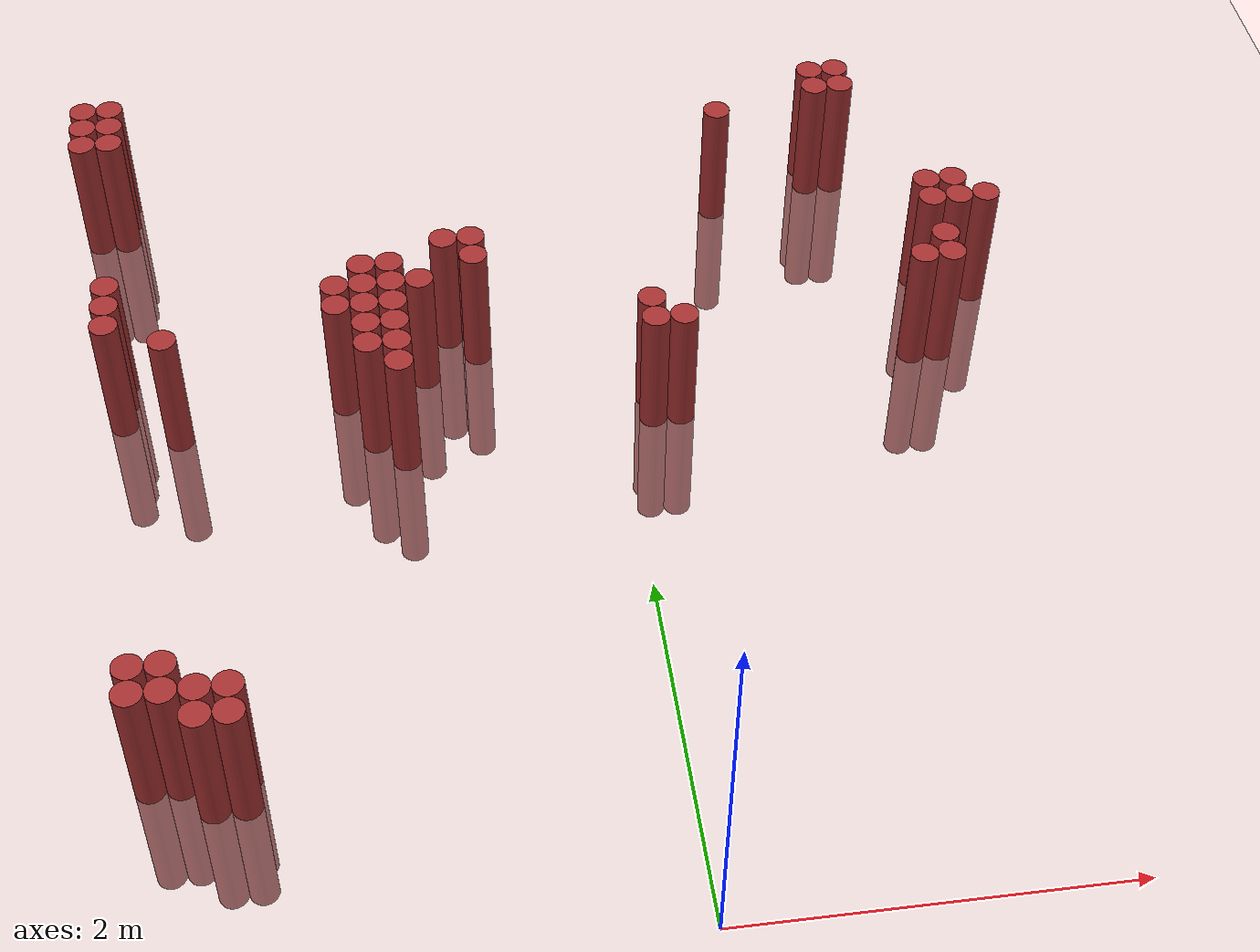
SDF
<sdf version="1.6">
 <world name="default">
  <model name="ground_plane">
   <static>1</static>
   <link name="link">
    <collision name="collision">
     <geometry><plane><normal>0 0 1</normal><size>100 100</size></plane></geometry>
     <surface><friction><ode><mu>100</mu><mu2>50</mu2></ode></friction></surface>
    </collision>
    <visual name="visual">
     <cast_shadows>0</cast_shadows>
     <geometry><plane><normal>0 0 1</normal><size>100 100</size></plane></geometry>
     <material>
      <script><uri>file://media/materials/scripts/gazebo.material</uri><name>Gazebo/Grey</name></script>
     </material>
    </visual>
   </link>
  </model>
  <model name="unit_cylinder_308">
   <static>1</static>
   <pose>-2.825000 4.975000 0.000000 0.000000 0.000000 0.000000</pose>
   <link name="link">
    <inertial>
     <mass>1</mass>
     <inertia><ixx>0.145833</ixx><ixy>0</ixy><ixz>0</ixz><iyy>0.145833</iyy><iyz>0</iyz><izz>0.125</izz></inertia>
    </inertial>
    <collision name="collision">
     <geometry><cylinder><radius>0.075000</radius><length>1.5</length></cylinder></geometry>
    </collision>
    <visual name="visual">
     <geometry><cylinder><radius>0.075000</radius><length>1.5</length></cylinder></geometry>
     <material>
      <ambient>0.648000 0.192000 0.192000 1</ambient>
      <diffuse>0.648000 0.192000 0.192000 1</diffuse>
     </material>
     <material>
      <script><name>Gazebo/Grey</name><uri>file://media/materials/scripts/gazebo.material</uri></script>
     </material>
    </visual>
   </link>
  </model>
  <model name="unit_cylinder_309">
   <static>1</static>
   <pose>-2.825000 5.125000 0.000000 0.000000 0.000000 0.000000</pose>
   <link name="link">
    <inertial>
     <mass>1</mass>
     <inertia><ixx>0.145833</ixx><ixy>0</ixy><ixz>0</ixz><iyy>0.145833</iyy><iyz>0</iyz><izz>0.125</izz></inertia>
    </inertial>
    <collision name="collision">
     <geometry><cylinder><radius>0.075000</radius><length>1.5</length></cylinder></geometry>
    </collision>
    <visual name="visual">
     <geometry><cylinder><radius>0.075000</radius><length>1.5</length></cylinder></geometry>
     <material>
      <ambient>0.648000 0.192000 0.192000 1</ambient>
      <diffuse>0.648000 0.192000 0.192000 1</diffuse>
     </material>
     <material>
      <script><name>Gazebo/Grey</name><uri>file://media/materials/scripts/gazebo.material</uri></script>
     </material>
    </visual>
   </link>
  </model>
  <model name="unit_cylinder_310">
   <static>1</static>
   <pose>-2.825000 5.275000 0.000000 0.000000 0.000000 0.000000</pose>
   <link name="link">
    <inertial>
     <mass>1</mass>
     <inertia><ixx>0.145833</ixx><ixy>0</ixy><ixz>0</ixz><iyy>0.145833</iyy><iyz>0</iyz><izz>0.125</izz></inertia>
    </inertial>
    <collision name="collision">
     <geometry><cylinder><radius>0.075000</radius><length>1.5</length></cylinder></geometry>
    </collision>
    <visual name="visual">
     <geometry><cylinder><radius>0.075000</radius><length>1.5</length></cylinder></geometry>
     <material>
      <ambient>0.648000 0.192000 0.192000 1</ambient>
      <diffuse>0.648000 0.192000 0.192000 1</diffuse>
     </material>
     <material>
      <script><name>Gazebo/Grey</name><uri>file://media/materials/scripts/gazebo.material</uri></script>
     </material>
    </visual>
   </link>
  </model>
  <model name="unit_cylinder_317">
   <static>1</static>
   <pose>-2.675000 3.475000 0.000000 0.000000 0.000000 0.000000</pose>
   <link name="link">
    <inertial>
     <mass>1</mass>
     <inertia><ixx>0.145833</ixx><ixy>0</ixy><ixz>0</ixz><iyy>0.145833</iyy><iyz>0</iyz><izz>0.125</izz></inertia>
    </inertial>
    <collision name="collision">
     <geometry><cylinder><radius>0.075000</radius><length>1.5</length></cylinder></geometry>
    </collision>
    <visual name="visual">
     <geometry><cylinder><radius>0.075000</radius><length>1.5</length></cylinder></geometry>
     <material>
      <ambient>0.648000 0.192000 0.192000 1</ambient>
      <diffuse>0.648000 0.192000 0.192000 1</diffuse>
     </material>
     <material>
      <script><name>Gazebo/Grey</name><uri>file://media/materials/scripts/gazebo.material</uri></script>
     </material>
    </visual>
   </link>
  </model>
  <model name="unit_cylinder_318">
   <static>1</static>
   <pose>-2.675000 3.625000 0.000000 0.000000 0.000000 0.000000</pose>
   <link name="link">
    <inertial>
     <mass>1</mass>
     <inertia><ixx>0.145833</ixx><ixy>0</ixy><ixz>0</ixz><iyy>0.145833</iyy><iyz>0</iyz><izz>0.125</izz></inertia>
    </inertial>
    <collision name="collision">
     <geometry><cylinder><radius>0.075000</radius><length>1.5</length></cylinder></geometry>
    </collision>
    <visual name="visual">
     <geometry><cylinder><radius>0.075000</radius><length>1.5</length></cylinder></geometry>
     <material>
      <ambient>0.648000 0.192000 0.192000 1</ambient>
      <diffuse>0.648000 0.192000 0.192000 1</diffuse>
     </material>
     <material>
      <script><name>Gazebo/Grey</name><uri>file://media/materials/scripts/gazebo.material</uri></script>
     </material>
    </visual>
   </link>
  </model>
  <model name="unit_cylinder_319">
   <static>1</static>
   <pose>-2.675000 3.775000 0.000000 0.000000 0.000000 0.000000</pose>
   <link name="link">
    <inertial>
     <mass>1</mass>
     <inertia><ixx>0.145833</ixx><ixy>0</ixy><ixz>0</ixz><iyy>0.145833</iyy><iyz>0</iyz><izz>0.125</izz></inertia>
    </inertial>
    <collision name="collision">
     <geometry><cylinder><radius>0.075000</radius><length>1.5</length></cylinder></geometry>
    </collision>
    <visual name="visual">
     <geometry><cylinder><radius>0.075000</radius><length>1.5</length></cylinder></geometry>
     <material>
      <ambient>0.648000 0.192000 0.192000 1</ambient>
      <diffuse>0.648000 0.192000 0.192000 1</diffuse>
     </material>
     <material>
      <script><name>Gazebo/Grey</name><uri>file://media/materials/scripts/gazebo.material</uri></script>
     </material>
    </visual>
   </link>
  </model>
  <model name="unit_cylinder_320">
   <static>1</static>
   <pose>-2.675000 4.975000 0.000000 0.000000 0.000000 0.000000</pose>
   <link name="link">
    <inertial>
     <mass>1</mass>
     <inertia><ixx>0.145833</ixx><ixy>0</ixy><ixz>0</ixz><iyy>0.145833</iyy><iyz>0</iyz><izz>0.125</izz></inertia>
    </inertial>
    <collision name="collision">
     <geometry><cylinder><radius>0.075000</radius><length>1.5</length></cylinder></geometry>
    </collision>
    <visual name="visual">
     <geometry><cylinder><radius>0.075000</radius><length>1.5</length></cylinder></geometry>
     <material>
      <ambient>0.648000 0.192000 0.192000 1</ambient>
      <diffuse>0.648000 0.192000 0.192000 1</diffuse>
     </material>
     <material>
      <script><name>Gazebo/Grey</name><uri>file://media/materials/scripts/gazebo.material</uri></script>
     </material>
    </visual>
   </link>
  </model>
  <model name="unit_cylinder_321">
   <static>1</static>
   <pose>-2.675000 5.125000 0.000000 0.000000 0.000000 0.000000</pose>
   <link name="link">
    <inertial>
     <mass>1</mass>
     <inertia><ixx>0.145833</ixx><ixy>0</ixy><ixz>0</ixz><iyy>0.145833</iyy><iyz>0</iyz><izz>0.125</izz></inertia>
    </inertial>
    <collision name="collision">
     <geometry><cylinder><radius>0.075000</radius><length>1.5</length></cylinder></geometry>
    </collision>
    <visual name="visual">
     <geometry><cylinder><radius>0.075000</radius><length>1.5</length></cylinder></geometry>
     <material>
      <ambient>0.648000 0.192000 0.192000 1</ambient>
      <diffuse>0.648000 0.192000 0.192000 1</diffuse>
     </material>
     <material>
      <script><name>Gazebo/Grey</name><uri>file://media/materials/scripts/gazebo.material</uri></script>
     </material>
    </visual>
   </link>
  </model>
  <model name="unit_cylinder_322">
   <static>1</static>
   <pose>-2.675000 5.275000 0.000000 0.000000 0.000000 0.000000</pose>
   <link name="link">
    <inertial>
     <mass>1</mass>
     <inertia><ixx>0.145833</ixx><ixy>0</ixy><ixz>0</ixz><iyy>0.145833</iyy><iyz>0</iyz><izz>0.125</izz></inertia>
    </inertial>
    <collision name="collision">
     <geometry><cylinder><radius>0.075000</radius><length>1.5</length></cylinder></geometry>
    </collision>
    <visual name="visual">
     <geometry><cylinder><radius>0.075000</radius><length>1.5</length></cylinder></geometry>
     <material>
      <ambient>0.648000 0.192000 0.192000 1</ambient>
      <diffuse>0.648000 0.192000 0.192000 1</diffuse>
     </material>
     <material>
      <script><name>Gazebo/Grey</name><uri>file://media/materials/scripts/gazebo.material</uri></script>
     </material>
    </visual>
   </link>
  </model>
  <model name="unit_cylinder_329">
   <static>1</static>
   <pose>-2.525000 1.075000 0.000000 0.000000 0.000000 0.000000</pose>
   <link name="link">
    <inertial>
     <mass>1</mass>
     <inertia><ixx>0.145833</ixx><ixy>0</ixy><ixz>0</ixz><iyy>0.145833</iyy><iyz>0</iyz><izz>0.125</izz></inertia>
    </inertial>
    <collision name="collision">
     <geometry><cylinder><radius>0.075000</radius><length>1.5</length></cylinder></geometry>
    </collision>
    <visual name="visual">
     <geometry><cylinder><radius>0.075000</radius><length>1.5</length></cylinder></geometry>
     <material>
      <ambient>0.648000 0.192000 0.192000 1</ambient>
      <diffuse>0.648000 0.192000 0.192000 1</diffuse>
     </material>
     <material>
      <script><name>Gazebo/Grey</name><uri>file://media/materials/scripts/gazebo.material</uri></script>
     </material>
    </visual>
   </link>
  </model>
  <model name="unit_cylinder_330">
   <static>1</static>
   <pose>-2.525000 1.225000 0.000000 0.000000 0.000000 0.000000</pose>
   <link name="link">
    <inertial>
     <mass>1</mass>
     <inertia><ixx>0.145833</ixx><ixy>0</ixy><ixz>0</ixz><iyy>0.145833</iyy><iyz>0</iyz><izz>0.125</izz></inertia>
    </inertial>
    <collision name="collision">
     <geometry><cylinder><radius>0.075000</radius><length>1.5</length></cylinder></geometry>
    </collision>
    <visual name="visual">
     <geometry><cylinder><radius>0.075000</radius><length>1.5</length></cylinder></geometry>
     <material>
      <ambient>0.648000 0.192000 0.192000 1</ambient>
      <diffuse>0.648000 0.192000 0.192000 1</diffuse>
     </material>
     <material>
      <script><name>Gazebo/Grey</name><uri>file://media/materials/scripts/gazebo.material</uri></script>
     </material>
    </visual>
   </link>
  </model>
  <model name="unit_cylinder_334">
   <static>1</static>
   <pose>-2.375000 1.075000 0.000000 0.000000 0.000000 0.000000</pose>
   <link name="link">
    <inertial>
     <mass>1</mass>
     <inertia><ixx>0.145833</ixx><ixy>0</ixy><ixz>0</ixz><iyy>0.145833</iyy><iyz>0</iyz><izz>0.125</izz></inertia>
    </inertial>
    <collision name="collision">
     <geometry><cylinder><radius>0.075000</radius><length>1.5</length></cylinder></geometry>
    </collision>
    <visual name="visual">
     <geometry><cylinder><radius>0.075000</radius><length>1.5</length></cylinder></geometry>
     <material>
      <ambient>0.648000 0.192000 0.192000 1</ambient>
      <diffuse>0.648000 0.192000 0.192000 1</diffuse>
     </material>
     <material>
      <script><name>Gazebo/Grey</name><uri>file://media/materials/scripts/gazebo.material</uri></script>
     </material>
    </visual>
   </link>
  </model>
  <model name="unit_cylinder_335">
   <static>1</static>
   <pose>-2.375000 1.225000 0.000000 0.000000 0.000000 0.000000</pose>
   <link name="link">
    <inertial>
     <mass>1</mass>
     <inertia><ixx>0.145833</ixx><ixy>0</ixy><ixz>0</ixz><iyy>0.145833</iyy><iyz>0</iyz><izz>0.125</izz></inertia>
    </inertial>
    <collision name="collision">
     <geometry><cylinder><radius>0.075000</radius><length>1.5</length></cylinder></geometry>
    </collision>
    <visual name="visual">
     <geometry><cylinder><radius>0.075000</radius><length>1.5</length></cylinder></geometry>
     <material>
      <ambient>0.648000 0.192000 0.192000 1</ambient>
      <diffuse>0.648000 0.192000 0.192000 1</diffuse>
     </material>
     <material>
      <script><name>Gazebo/Grey</name><uri>file://media/materials/scripts/gazebo.material</uri></script>
     </material>
    </visual>
   </link>
  </model>
  <model name="unit_cylinder_336">
   <static>1</static>
   <pose>-2.375000 3.325000 0.000000 0.000000 0.000000 0.000000</pose>
   <link name="link">
    <inertial>
     <mass>1</mass>
     <inertia><ixx>0.145833</ixx><ixy>0</ixy><ixz>0</ixz><iyy>0.145833</iyy><iyz>0</iyz><izz>0.125</izz></inertia>
    </inertial>
    <collision name="collision">
     <geometry><cylinder><radius>0.075000</radius><length>1.5</length></cylinder></geometry>
    </collision>
    <visual name="visual">
     <geometry><cylinder><radius>0.075000</radius><length>1.5</length></cylinder></geometry>
     <material>
      <ambient>0.648000 0.192000 0.192000 1</ambient>
      <diffuse>0.648000 0.192000 0.192000 1</diffuse>
     </material>
     <material>
      <script><name>Gazebo/Grey</name><uri>file://media/materials/scripts/gazebo.material</uri></script>
     </material>
    </visual>
   </link>
  </model>
  <model name="unit_cylinder_337">
   <static>1</static>
   <pose>-2.225000 0.925000 0.000000 0.000000 0.000000 0.000000</pose>
   <link name="link">
    <inertial>
     <mass>1</mass>
     <inertia><ixx>0.145833</ixx><ixy>0</ixy><ixz>0</ixz><iyy>0.145833</iyy><iyz>0</iyz><izz>0.125</izz></inertia>
    </inertial>
    <collision name="collision">
     <geometry><cylinder><radius>0.075000</radius><length>1.5</length></cylinder></geometry>
    </collision>
    <visual name="visual">
     <geometry><cylinder><radius>0.075000</radius><length>1.5</length></cylinder></geometry>
     <material>
      <ambient>0.648000 0.192000 0.192000 1</ambient>
      <diffuse>0.648000 0.192000 0.192000 1</diffuse>
     </material>
     <material>
      <script><name>Gazebo/Grey</name><uri>file://media/materials/scripts/gazebo.material</uri></script>
     </material>
    </visual>
   </link>
  </model>
  <model name="unit_cylinder_338">
   <static>1</static>
   <pose>-2.225000 1.075000 0.000000 0.000000 0.000000 0.000000</pose>
   <link name="link">
    <inertial>
     <mass>1</mass>
     <inertia><ixx>0.145833</ixx><ixy>0</ixy><ixz>0</ixz><iyy>0.145833</iyy><iyz>0</iyz><izz>0.125</izz></inertia>
    </inertial>
    <collision name="collision">
     <geometry><cylinder><radius>0.075000</radius><length>1.5</length></cylinder></geometry>
    </collision>
    <visual name="visual">
     <geometry><cylinder><radius>0.075000</radius><length>1.5</length></cylinder></geometry>
     <material>
      <ambient>0.648000 0.192000 0.192000 1</ambient>
      <diffuse>0.648000 0.192000 0.192000 1</diffuse>
     </material>
     <material>
      <script><name>Gazebo/Grey</name><uri>file://media/materials/scripts/gazebo.material</uri></script>
     </material>
    </visual>
   </link>
  </model>
  <model name="unit_cylinder_339">
   <static>1</static>
   <pose>-2.075000 0.925000 0.000000 0.000000 0.000000 0.000000</pose>
   <link name="link">
    <inertial>
     <mass>1</mass>
     <inertia><ixx>0.145833</ixx><ixy>0</ixy><ixz>0</ixz><iyy>0.145833</iyy><iyz>0</iyz><izz>0.125</izz></inertia>
    </inertial>
    <collision name="collision">
     <geometry><cylinder><radius>0.075000</radius><length>1.5</length></cylinder></geometry>
    </collision>
    <visual name="visual">
     <geometry><cylinder><radius>0.075000</radius><length>1.5</length></cylinder></geometry>
     <material>
      <ambient>0.648000 0.192000 0.192000 1</ambient>
      <diffuse>0.648000 0.192000 0.192000 1</diffuse>
     </material>
     <material>
      <script><name>Gazebo/Grey</name><uri>file://media/materials/scripts/gazebo.material</uri></script>
     </material>
    </visual>
   </link>
  </model>
  <model name="unit_cylinder_340">
   <static>1</static>
   <pose>-2.075000 1.075000 0.000000 0.000000 0.000000 0.000000</pose>
   <link name="link">
    <inertial>
     <mass>1</mass>
     <inertia><ixx>0.145833</ixx><ixy>0</ixy><ixz>0</ixz><iyy>0.145833</iyy><iyz>0</iyz><izz>0.125</izz></inertia>
    </inertial>
    <collision name="collision">
     <geometry><cylinder><radius>0.075000</radius><length>1.5</length></cylinder></geometry>
    </collision>
    <visual name="visual">
     <geometry><cylinder><radius>0.075000</radius><length>1.5</length></cylinder></geometry>
     <material>
      <ambient>0.648000 0.192000 0.192000 1</ambient>
      <diffuse>0.648000 0.192000 0.192000 1</diffuse>
     </material>
     <material>
      <script><name>Gazebo/Grey</name><uri>file://media/materials/scripts/gazebo.material</uri></script>
     </material>
    </visual>
   </link>
  </model>
  <model name="unit_cylinder_341">
   <static>1</static>
   <pose>-1.475000 3.475000 0.000000 0.000000 0.000000 0.000000</pose>
   <link name="link">
    <inertial>
     <mass>1</mass>
     <inertia><ixx>0.145833</ixx><ixy>0</ixy><ixz>0</ixz><iyy>0.145833</iyy><iyz>0</iyz><izz>0.125</izz></inertia>
    </inertial>
    <collision name="collision">
     <geometry><cylinder><radius>0.075000</radius><length>1.5</length></cylinder></geometry>
    </collision>
    <visual name="visual">
     <geometry><cylinder><radius>0.075000</radius><length>1.5</length></cylinder></geometry>
     <material>
      <ambient>0.648000 0.192000 0.192000 1</ambient>
      <diffuse>0.648000 0.192000 0.192000 1</diffuse>
     </material>
     <material>
      <script><name>Gazebo/Grey</name><uri>file://media/materials/scripts/gazebo.material</uri></script>
     </material>
    </visual>
   </link>
  </model>
  <model name="unit_cylinder_342">
   <static>1</static>
   <pose>-1.475000 3.625000 0.000000 0.000000 0.000000 0.000000</pose>
   <link name="link">
    <inertial>
     <mass>1</mass>
     <inertia><ixx>0.145833</ixx><ixy>0</ixy><ixz>0</ixz><iyy>0.145833</iyy><iyz>0</iyz><izz>0.125</izz></inertia>
    </inertial>
    <collision name="collision">
     <geometry><cylinder><radius>0.075000</radius><length>1.5</length></cylinder></geometry>
    </collision>
    <visual name="visual">
     <geometry><cylinder><radius>0.075000</radius><length>1.5</length></cylinder></geometry>
     <material>
      <ambient>0.648000 0.192000 0.192000 1</ambient>
      <diffuse>0.648000 0.192000 0.192000 1</diffuse>
     </material>
     <material>
      <script><name>Gazebo/Grey</name><uri>file://media/materials/scripts/gazebo.material</uri></script>
     </material>
    </visual>
   </link>
  </model>
  <model name="unit_cylinder_343">
   <static>1</static>
   <pose>-1.325000 3.175000 0.000000 0.000000 0.000000 0.000000</pose>
   <link name="link">
    <inertial>
     <mass>1</mass>
     <inertia><ixx>0.145833</ixx><ixy>0</ixy><ixz>0</ixz><iyy>0.145833</iyy><iyz>0</iyz><izz>0.125</izz></inertia>
    </inertial>
    <collision name="collision">
     <geometry><cylinder><radius>0.075000</radius><length>1.5</length></cylinder></geometry>
    </collision>
    <visual name="visual">
     <geometry><cylinder><radius>0.075000</radius><length>1.5</length></cylinder></geometry>
     <material>
      <ambient>0.648000 0.192000 0.192000 1</ambient>
      <diffuse>0.648000 0.192000 0.192000 1</diffuse>
     </material>
     <material>
      <script><name>Gazebo/Grey</name><uri>file://media/materials/scripts/gazebo.material</uri></script>
     </material>
    </visual>
   </link>
  </model>
  <model name="unit_cylinder_344">
   <static>1</static>
   <pose>-1.325000 3.325000 0.000000 0.000000 0.000000 0.000000</pose>
   <link name="link">
    <inertial>
     <mass>1</mass>
     <inertia><ixx>0.145833</ixx><ixy>0</ixy><ixz>0</ixz><iyy>0.145833</iyy><iyz>0</iyz><izz>0.125</izz></inertia>
    </inertial>
    <collision name="collision">
     <geometry><cylinder><radius>0.075000</radius><length>1.5</length></cylinder></geometry>
    </collision>
    <visual name="visual">
     <geometry><cylinder><radius>0.075000</radius><length>1.5</length></cylinder></geometry>
     <material>
      <ambient>0.648000 0.192000 0.192000 1</ambient>
      <diffuse>0.648000 0.192000 0.192000 1</diffuse>
     </material>
     <material>
      <script><name>Gazebo/Grey</name><uri>file://media/materials/scripts/gazebo.material</uri></script>
     </material>
    </visual>
   </link>
  </model>
  <model name="unit_cylinder_345">
   <static>1</static>
   <pose>-1.325000 3.475000 0.000000 0.000000 0.000000 0.000000</pose>
   <link name="link">
    <inertial>
     <mass>1</mass>
     <inertia><ixx>0.145833</ixx><ixy>0</ixy><ixz>0</ixz><iyy>0.145833</iyy><iyz>0</iyz><izz>0.125</izz></inertia>
    </inertial>
    <collision name="collision">
     <geometry><cylinder><radius>0.075000</radius><length>1.5</length></cylinder></geometry>
    </collision>
    <visual name="visual">
     <geometry><cylinder><radius>0.075000</radius><length>1.5</length></cylinder></geometry>
     <material>
      <ambient>0.648000 0.192000 0.192000 1</ambient>
      <diffuse>0.648000 0.192000 0.192000 1</diffuse>
     </material>
     <material>
      <script><name>Gazebo/Grey</name><uri>file://media/materials/scripts/gazebo.material</uri></script>
     </material>
    </visual>
   </link>
  </model>
  <model name="unit_cylinder_346">
   <static>1</static>
   <pose>-1.325000 3.625000 0.000000 0.000000 0.000000 0.000000</pose>
   <link name="link">
    <inertial>
     <mass>1</mass>
     <inertia><ixx>0.145833</ixx><ixy>0</ixy><ixz>0</ixz><iyy>0.145833</iyy><iyz>0</iyz><izz>0.125</izz></inertia>
    </inertial>
    <collision name="collision">
     <geometry><cylinder><radius>0.075000</radius><length>1.5</length></cylinder></geometry>
    </collision>
    <visual name="visual">
     <geometry><cylinder><radius>0.075000</radius><length>1.5</length></cylinder></geometry>
     <material>
      <ambient>0.648000 0.192000 0.192000 1</ambient>
      <diffuse>0.648000 0.192000 0.192000 1</diffuse>
     </material>
     <material>
      <script><name>Gazebo/Grey</name><uri>file://media/materials/scripts/gazebo.material</uri></script>
     </material>
    </visual>
   </link>
  </model>
  <model name="unit_cylinder_347">
   <static>1</static>
   <pose>-1.325000 3.775000 0.000000 0.000000 0.000000 0.000000</pose>
   <link name="link">
    <inertial>
     <mass>1</mass>
     <inertia><ixx>0.145833</ixx><ixy>0</ixy><ixz>0</ixz><iyy>0.145833</iyy><iyz>0</iyz><izz>0.125</izz></inertia>
    </inertial>
    <collision name="collision">
     <geometry><cylinder><radius>0.075000</radius><length>1.5</length></cylinder></geometry>
    </collision>
    <visual name="visual">
     <geometry><cylinder><radius>0.075000</radius><length>1.5</length></cylinder></geometry>
     <material>
      <ambient>0.648000 0.192000 0.192000 1</ambient>
      <diffuse>0.648000 0.192000 0.192000 1</diffuse>
     </material>
     <material>
      <script><name>Gazebo/Grey</name><uri>file://media/materials/scripts/gazebo.material</uri></script>
     </material>
    </visual>
   </link>
  </model>
  <model name="unit_cylinder_348">
   <static>1</static>
   <pose>-1.175000 3.025000 0.000000 0.000000 0.000000 0.000000</pose>
   <link name="link">
    <inertial>
     <mass>1</mass>
     <inertia><ixx>0.145833</ixx><ixy>0</ixy><ixz>0</ixz><iyy>0.145833</iyy><iyz>0</iyz><izz>0.125</izz></inertia>
    </inertial>
    <collision name="collision">
     <geometry><cylinder><radius>0.075000</radius><length>1.5</length></cylinder></geometry>
    </collision>
    <visual name="visual">
     <geometry><cylinder><radius>0.075000</radius><length>1.5</length></cylinder></geometry>
     <material>
      <ambient>0.648000 0.192000 0.192000 1</ambient>
      <diffuse>0.648000 0.192000 0.192000 1</diffuse>
     </material>
     <material>
      <script><name>Gazebo/Grey</name><uri>file://media/materials/scripts/gazebo.material</uri></script>
     </material>
    </visual>
   </link>
  </model>
  <model name="unit_cylinder_349">
   <static>1</static>
   <pose>-1.175000 3.175000 0.000000 0.000000 0.000000 0.000000</pose>
   <link name="link">
    <inertial>
     <mass>1</mass>
     <inertia><ixx>0.145833</ixx><ixy>0</ixy><ixz>0</ixz><iyy>0.145833</iyy><iyz>0</iyz><izz>0.125</izz></inertia>
    </inertial>
    <collision name="collision">
     <geometry><cylinder><radius>0.075000</radius><length>1.5</length></cylinder></geometry>
    </collision>
    <visual name="visual">
     <geometry><cylinder><radius>0.075000</radius><length>1.5</length></cylinder></geometry>
     <material>
      <ambient>0.648000 0.192000 0.192000 1</ambient>
      <diffuse>0.648000 0.192000 0.192000 1</diffuse>
     </material>
     <material>
      <script><name>Gazebo/Grey</name><uri>file://media/materials/scripts/gazebo.material</uri></script>
     </material>
    </visual>
   </link>
  </model>
  <model name="unit_cylinder_350">
   <static>1</static>
   <pose>-1.175000 3.325000 0.000000 0.000000 0.000000 0.000000</pose>
   <link name="link">
    <inertial>
     <mass>1</mass>
     <inertia><ixx>0.145833</ixx><ixy>0</ixy><ixz>0</ixz><iyy>0.145833</iyy><iyz>0</iyz><izz>0.125</izz></inertia>
    </inertial>
    <collision name="collision">
     <geometry><cylinder><radius>0.075000</radius><length>1.5</length></cylinder></geometry>
    </collision>
    <visual name="visual">
     <geometry><cylinder><radius>0.075000</radius><length>1.5</length></cylinder></geometry>
     <material>
      <ambient>0.648000 0.192000 0.192000 1</ambient>
      <diffuse>0.648000 0.192000 0.192000 1</diffuse>
     </material>
     <material>
      <script><name>Gazebo/Grey</name><uri>file://media/materials/scripts/gazebo.material</uri></script>
     </material>
    </visual>
   </link>
  </model>
  <model name="unit_cylinder_351">
   <static>1</static>
   <pose>-1.175000 3.475000 0.000000 0.000000 0.000000 0.000000</pose>
   <link name="link">
    <inertial>
     <mass>1</mass>
     <inertia><ixx>0.145833</ixx><ixy>0</ixy><ixz>0</ixz><iyy>0.145833</iyy><iyz>0</iyz><izz>0.125</izz></inertia>
    </inertial>
    <collision name="collision">
     <geometry><cylinder><radius>0.075000</radius><length>1.5</length></cylinder></geometry>
    </collision>
    <visual name="visual">
     <geometry><cylinder><radius>0.075000</radius><length>1.5</length></cylinder></geometry>
     <material>
      <ambient>0.648000 0.192000 0.192000 1</ambient>
      <diffuse>0.648000 0.192000 0.192000 1</diffuse>
     </material>
     <material>
      <script><name>Gazebo/Grey</name><uri>file://media/materials/scripts/gazebo.material</uri></script>
     </material>
    </visual>
   </link>
  </model>
  <model name="unit_cylinder_352">
   <static>1</static>
   <pose>-1.175000 3.625000 0.000000 0.000000 0.000000 0.000000</pose>
   <link name="link">
    <inertial>
     <mass>1</mass>
     <inertia><ixx>0.145833</ixx><ixy>0</ixy><ixz>0</ixz><iyy>0.145833</iyy><iyz>0</iyz><izz>0.125</izz></inertia>
    </inertial>
    <collision name="collision">
     <geometry><cylinder><radius>0.075000</radius><length>1.5</length></cylinder></geometry>
    </collision>
    <visual name="visual">
     <geometry><cylinder><radius>0.075000</radius><length>1.5</length></cylinder></geometry>
     <material>
      <ambient>0.648000 0.192000 0.192000 1</ambient>
      <diffuse>0.648000 0.192000 0.192000 1</diffuse>
     </material>
     <material>
      <script><name>Gazebo/Grey</name><uri>file://media/materials/scripts/gazebo.material</uri></script>
     </material>
    </visual>
   </link>
  </model>
  <model name="unit_cylinder_353">
   <static>1</static>
   <pose>-1.175000 3.775000 0.000000 0.000000 0.000000 0.000000</pose>
   <link name="link">
    <inertial>
     <mass>1</mass>
     <inertia><ixx>0.145833</ixx><ixy>0</ixy><ixz>0</ixz><iyy>0.145833</iyy><iyz>0</iyz><izz>0.125</izz></inertia>
    </inertial>
    <collision name="collision">
     <geometry><cylinder><radius>0.075000</radius><length>1.5</length></cylinder></geometry>
    </collision>
    <visual name="visual">
     <geometry><cylinder><radius>0.075000</radius><length>1.5</length></cylinder></geometry>
     <material>
      <ambient>0.648000 0.192000 0.192000 1</ambient>
      <diffuse>0.648000 0.192000 0.192000 1</diffuse>
     </material>
     <material>
      <script><name>Gazebo/Grey</name><uri>file://media/materials/scripts/gazebo.material</uri></script>
     </material>
    </visual>
   </link>
  </model>
  <model name="unit_cylinder_354">
   <static>1</static>
   <pose>-1.025000 3.625000 0.000000 0.000000 0.000000 0.000000</pose>
   <link name="link">
    <inertial>
     <mass>1</mass>
     <inertia><ixx>0.145833</ixx><ixy>0</ixy><ixz>0</ixz><iyy>0.145833</iyy><iyz>0</iyz><izz>0.125</izz></inertia>
    </inertial>
    <collision name="collision">
     <geometry><cylinder><radius>0.075000</radius><length>1.5</length></cylinder></geometry>
    </collision>
    <visual name="visual">
     <geometry><cylinder><radius>0.075000</radius><length>1.5</length></cylinder></geometry>
     <material>
      <ambient>0.648000 0.192000 0.192000 1</ambient>
      <diffuse>0.648000 0.192000 0.192000 1</diffuse>
     </material>
     <material>
      <script><name>Gazebo/Grey</name><uri>file://media/materials/scripts/gazebo.material</uri></script>
     </material>
    </visual>
   </link>
  </model>
  <model name="unit_cylinder_357">
   <static>1</static>
   <pose>-0.875000 3.925000 0.000000 0.000000 0.000000 0.000000</pose>
   <link name="link">
    <inertial>
     <mass>1</mass>
     <inertia><ixx>0.145833</ixx><ixy>0</ixy><ixz>0</ixz><iyy>0.145833</iyy><iyz>0</iyz><izz>0.125</izz></inertia>
    </inertial>
    <collision name="collision">
     <geometry><cylinder><radius>0.075000</radius><length>1.5</length></cylinder></geometry>
    </collision>
    <visual name="visual">
     <geometry><cylinder><radius>0.075000</radius><length>1.5</length></cylinder></geometry>
     <material>
      <ambient>0.648000 0.192000 0.192000 1</ambient>
      <diffuse>0.648000 0.192000 0.192000 1</diffuse>
     </material>
     <material>
      <script><name>Gazebo/Grey</name><uri>file://media/materials/scripts/gazebo.material</uri></script>
     </material>
    </visual>
   </link>
  </model>
  <model name="unit_cylinder_361">
   <static>1</static>
   <pose>-0.725000 3.775000 0.000000 0.000000 0.000000 0.000000</pose>
   <link name="link">
    <inertial>
     <mass>1</mass>
     <inertia><ixx>0.145833</ixx><ixy>0</ixy><ixz>0</ixz><iyy>0.145833</iyy><iyz>0</iyz><izz>0.125</izz></inertia>
    </inertial>
    <collision name="collision">
     <geometry><cylinder><radius>0.075000</radius><length>1.5</length></cylinder></geometry>
    </collision>
    <visual name="visual">
     <geometry><cylinder><radius>0.075000</radius><length>1.5</length></cylinder></geometry>
     <material>
      <ambient>0.648000 0.192000 0.192000 1</ambient>
      <diffuse>0.648000 0.192000 0.192000 1</diffuse>
     </material>
     <material>
      <script><name>Gazebo/Grey</name><uri>file://media/materials/scripts/gazebo.material</uri></script>
     </material>
    </visual>
   </link>
  </model>
  <model name="unit_cylinder_362">
   <static>1</static>
   <pose>-0.725000 3.925000 0.000000 0.000000 0.000000 0.000000</pose>
   <link name="link">
    <inertial>
     <mass>1</mass>
     <inertia><ixx>0.145833</ixx><ixy>0</ixy><ixz>0</ixz><iyy>0.145833</iyy><iyz>0</iyz><izz>0.125</izz></inertia>
    </inertial>
    <collision name="collision">
     <geometry><cylinder><radius>0.075000</radius><length>1.5</length></cylinder></geometry>
    </collision>
    <visual name="visual">
     <geometry><cylinder><radius>0.075000</radius><length>1.5</length></cylinder></geometry>
     <material>
      <ambient>0.648000 0.192000 0.192000 1</ambient>
      <diffuse>0.648000 0.192000 0.192000 1</diffuse>
     </material>
     <material>
      <script><name>Gazebo/Grey</name><uri>file://media/materials/scripts/gazebo.material</uri></script>
     </material>
    </visual>
   </link>
  </model>
  <model name="unit_cylinder_373">
   <static>1</static>
   <pose>0.175000 3.175000 0.000000 0.000000 0.000000 0.000000</pose>
   <link name="link">
    <inertial>
     <mass>1</mass>
     <inertia><ixx>0.145833</ixx><ixy>0</ixy><ixz>0</ixz><iyy>0.145833</iyy><iyz>0</iyz><izz>0.125</izz></inertia>
    </inertial>
    <collision name="collision">
     <geometry><cylinder><radius>0.075000</radius><length>1.5</length></cylinder></geometry>
    </collision>
    <visual name="visual">
     <geometry><cylinder><radius>0.075000</radius><length>1.5</length></cylinder></geometry>
     <material>
      <ambient>0.648000 0.192000 0.192000 1</ambient>
      <diffuse>0.648000 0.192000 0.192000 1</diffuse>
     </material>
     <material>
      <script><name>Gazebo/Grey</name><uri>file://media/materials/scripts/gazebo.material</uri></script>
     </material>
    </visual>
   </link>
  </model>
  <model name="unit_cylinder_374">
   <static>1</static>
   <pose>0.175000 3.325000 0.000000 0.000000 0.000000 0.000000</pose>
   <link name="link">
    <inertial>
     <mass>1</mass>
     <inertia><ixx>0.145833</ixx><ixy>0</ixy><ixz>0</ixz><iyy>0.145833</iyy><iyz>0</iyz><izz>0.125</izz></inertia>
    </inertial>
    <collision name="collision">
     <geometry><cylinder><radius>0.075000</radius><length>1.5</length></cylinder></geometry>
    </collision>
    <visual name="visual">
     <geometry><cylinder><radius>0.075000</radius><length>1.5</length></cylinder></geometry>
     <material>
      <ambient>0.648000 0.192000 0.192000 1</ambient>
      <diffuse>0.648000 0.192000 0.192000 1</diffuse>
     </material>
     <material>
      <script><name>Gazebo/Grey</name><uri>file://media/materials/scripts/gazebo.material</uri></script>
     </material>
    </visual>
   </link>
  </model>
  <model name="unit_cylinder_375">
   <static>1</static>
   <pose>0.325000 3.175000 0.000000 0.000000 0.000000 0.000000</pose>
   <link name="link">
    <inertial>
     <mass>1</mass>
     <inertia><ixx>0.145833</ixx><ixy>0</ixy><ixz>0</ixz><iyy>0.145833</iyy><iyz>0</iyz><izz>0.125</izz></inertia>
    </inertial>
    <collision name="collision">
     <geometry><cylinder><radius>0.075000</radius><length>1.5</length></cylinder></geometry>
    </collision>
    <visual name="visual">
     <geometry><cylinder><radius>0.075000</radius><length>1.5</length></cylinder></geometry>
     <material>
      <ambient>0.648000 0.192000 0.192000 1</ambient>
      <diffuse>0.648000 0.192000 0.192000 1</diffuse>
     </material>
     <material>
      <script><name>Gazebo/Grey</name><uri>file://media/materials/scripts/gazebo.material</uri></script>
     </material>
    </visual>
   </link>
  </model>
  <model name="unit_cylinder_378">
   <static>1</static>
   <pose>0.775000 4.825000 0.000000 0.000000 0.000000 0.000000</pose>
   <link name="link">
    <inertial>
     <mass>1</mass>
     <inertia><ixx>0.145833</ixx><ixy>0</ixy><ixz>0</ixz><iyy>0.145833</iyy><iyz>0</iyz><izz>0.125</izz></inertia>
    </inertial>
    <collision name="collision">
     <geometry><cylinder><radius>0.075000</radius><length>1.5</length></cylinder></geometry>
    </collision>
    <visual name="visual">
     <geometry><cylinder><radius>0.075000</radius><length>1.5</length></cylinder></geometry>
     <material>
      <ambient>0.648000 0.192000 0.192000 1</ambient>
      <diffuse>0.648000 0.192000 0.192000 1</diffuse>
     </material>
     <material>
      <script><name>Gazebo/Grey</name><uri>file://media/materials/scripts/gazebo.material</uri></script>
     </material>
    </visual>
   </link>
  </model>
  <model name="unit_cylinder_385">
   <static>1</static>
   <pose>1.375000 4.975000 0.000000 0.000000 0.000000 0.000000</pose>
   <link name="link">
    <inertial>
     <mass>1</mass>
     <inertia><ixx>0.145833</ixx><ixy>0</ixy><ixz>0</ixz><iyy>0.145833</iyy><iyz>0</iyz><izz>0.125</izz></inertia>
    </inertial>
    <collision name="collision">
     <geometry><cylinder><radius>0.075000</radius><length>1.5</length></cylinder></geometry>
    </collision>
    <visual name="visual">
     <geometry><cylinder><radius>0.075000</radius><length>1.5</length></cylinder></geometry>
     <material>
      <ambient>0.648000 0.192000 0.192000 1</ambient>
      <diffuse>0.648000 0.192000 0.192000 1</diffuse>
     </material>
     <material>
      <script><name>Gazebo/Grey</name><uri>file://media/materials/scripts/gazebo.material</uri></script>
     </material>
    </visual>
   </link>
  </model>
  <model name="unit_cylinder_386">
   <static>1</static>
   <pose>1.375000 5.125000 0.000000 0.000000 0.000000 0.000000</pose>
   <link name="link">
    <inertial>
     <mass>1</mass>
     <inertia><ixx>0.145833</ixx><ixy>0</ixy><ixz>0</ixz><iyy>0.145833</iyy><iyz>0</iyz><izz>0.125</izz></inertia>
    </inertial>
    <collision name="collision">
     <geometry><cylinder><radius>0.075000</radius><length>1.5</length></cylinder></geometry>
    </collision>
    <visual name="visual">
     <geometry><cylinder><radius>0.075000</radius><length>1.5</length></cylinder></geometry>
     <material>
      <ambient>0.648000 0.192000 0.192000 1</ambient>
      <diffuse>0.648000 0.192000 0.192000 1</diffuse>
     </material>
     <material>
      <script><name>Gazebo/Grey</name><uri>file://media/materials/scripts/gazebo.material</uri></script>
     </material>
    </visual>
   </link>
  </model>
  <model name="unit_cylinder_388">
   <static>1</static>
   <pose>1.525000 4.975000 0.000000 0.000000 0.000000 0.000000</pose>
   <link name="link">
    <inertial>
     <mass>1</mass>
     <inertia><ixx>0.145833</ixx><ixy>0</ixy><ixz>0</ixz><iyy>0.145833</iyy><iyz>0</iyz><izz>0.125</izz></inertia>
    </inertial>
    <collision name="collision">
     <geometry><cylinder><radius>0.075000</radius><length>1.5</length></cylinder></geometry>
    </collision>
    <visual name="visual">
     <geometry><cylinder><radius>0.075000</radius><length>1.5</length></cylinder></geometry>
     <material>
      <ambient>0.648000 0.192000 0.192000 1</ambient>
      <diffuse>0.648000 0.192000 0.192000 1</diffuse>
     </material>
     <material>
      <script><name>Gazebo/Grey</name><uri>file://media/materials/scripts/gazebo.material</uri></script>
     </material>
    </visual>
   </link>
  </model>
  <model name="unit_cylinder_389">
   <static>1</static>
   <pose>1.525000 5.125000 0.000000 0.000000 0.000000 0.000000</pose>
   <link name="link">
    <inertial>
     <mass>1</mass>
     <inertia><ixx>0.145833</ixx><ixy>0</ixy><ixz>0</ixz><iyy>0.145833</iyy><iyz>0</iyz><izz>0.125</izz></inertia>
    </inertial>
    <collision name="collision">
     <geometry><cylinder><radius>0.075000</radius><length>1.5</length></cylinder></geometry>
    </collision>
    <visual name="visual">
     <geometry><cylinder><radius>0.075000</radius><length>1.5</length></cylinder></geometry>
     <material>
      <ambient>0.648000 0.192000 0.192000 1</ambient>
      <diffuse>0.648000 0.192000 0.192000 1</diffuse>
     </material>
     <material>
      <script><name>Gazebo/Grey</name><uri>file://media/materials/scripts/gazebo.material</uri></script>
     </material>
    </visual>
   </link>
  </model>
  <model name="unit_cylinder_393">
   <static>1</static>
   <pose>1.675000 3.475000 0.000000 0.000000 0.000000 0.000000</pose>
   <link name="link">
    <inertial>
     <mass>1</mass>
     <inertia><ixx>0.145833</ixx><ixy>0</ixy><ixz>0</ixz><iyy>0.145833</iyy><iyz>0</iyz><izz>0.125</izz></inertia>
    </inertial>
    <collision name="collision">
     <geometry><cylinder><radius>0.075000</radius><length>1.5</length></cylinder></geometry>
    </collision>
    <visual name="visual">
     <geometry><cylinder><radius>0.075000</radius><length>1.5</length></cylinder></geometry>
     <material>
      <ambient>0.648000 0.192000 0.192000 1</ambient>
      <diffuse>0.648000 0.192000 0.192000 1</diffuse>
     </material>
     <material>
      <script><name>Gazebo/Grey</name><uri>file://media/materials/scripts/gazebo.material</uri></script>
     </material>
    </visual>
   </link>
  </model>
  <model name="unit_cylinder_396">
   <static>1</static>
   <pose>1.825000 3.475000 0.000000 0.000000 0.000000 0.000000</pose>
   <link name="link">
    <inertial>
     <mass>1</mass>
     <inertia><ixx>0.145833</ixx><ixy>0</ixy><ixz>0</ixz><iyy>0.145833</iyy><iyz>0</iyz><izz>0.125</izz></inertia>
    </inertial>
    <collision name="collision">
     <geometry><cylinder><radius>0.075000</radius><length>1.5</length></cylinder></geometry>
    </collision>
    <visual name="visual">
     <geometry><cylinder><radius>0.075000</radius><length>1.5</length></cylinder></geometry>
     <material>
      <ambient>0.648000 0.192000 0.192000 1</ambient>
      <diffuse>0.648000 0.192000 0.192000 1</diffuse>
     </material>
     <material>
      <script><name>Gazebo/Grey</name><uri>file://media/materials/scripts/gazebo.material</uri></script>
     </material>
    </visual>
   </link>
  </model>
  <model name="unit_cylinder_397">
   <static>1</static>
   <pose>1.825000 3.625000 0.000000 0.000000 0.000000 0.000000</pose>
   <link name="link">
    <inertial>
     <mass>1</mass>
     <inertia><ixx>0.145833</ixx><ixy>0</ixy><ixz>0</ixz><iyy>0.145833</iyy><iyz>0</iyz><izz>0.125</izz></inertia>
    </inertial>
    <collision name="collision">
     <geometry><cylinder><radius>0.075000</radius><length>1.5</length></cylinder></geometry>
    </collision>
    <visual name="visual">
     <geometry><cylinder><radius>0.075000</radius><length>1.5</length></cylinder></geometry>
     <material>
      <ambient>0.648000 0.192000 0.192000 1</ambient>
      <diffuse>0.648000 0.192000 0.192000 1</diffuse>
     </material>
     <material>
      <script><name>Gazebo/Grey</name><uri>file://media/materials/scripts/gazebo.material</uri></script>
     </material>
    </visual>
   </link>
  </model>
  <model name="unit_cylinder_398">
   <static>1</static>
   <pose>1.825000 3.925000 0.000000 0.000000 0.000000 0.000000</pose>
   <link name="link">
    <inertial>
     <mass>1</mass>
     <inertia><ixx>0.145833</ixx><ixy>0</ixy><ixz>0</ixz><iyy>0.145833</iyy><iyz>0</iyz><izz>0.125</izz></inertia>
    </inertial>
    <collision name="collision">
     <geometry><cylinder><radius>0.075000</radius><length>1.5</length></cylinder></geometry>
    </collision>
    <visual name="visual">
     <geometry><cylinder><radius>0.075000</radius><length>1.5</length></cylinder></geometry>
     <material>
      <ambient>0.648000 0.192000 0.192000 1</ambient>
      <diffuse>0.648000 0.192000 0.192000 1</diffuse>
     </material>
     <material>
      <script><name>Gazebo/Grey</name><uri>file://media/materials/scripts/gazebo.material</uri></script>
     </material>
    </visual>
   </link>
  </model>
  <model name="unit_cylinder_399">
   <static>1</static>
   <pose>1.825000 4.075000 0.000000 0.000000 0.000000 0.000000</pose>
   <link name="link">
    <inertial>
     <mass>1</mass>
     <inertia><ixx>0.145833</ixx><ixy>0</ixy><ixz>0</ixz><iyy>0.145833</iyy><iyz>0</iyz><izz>0.125</izz></inertia>
    </inertial>
    <collision name="collision">
     <geometry><cylinder><radius>0.075000</radius><length>1.5</length></cylinder></geometry>
    </collision>
    <visual name="visual">
     <geometry><cylinder><radius>0.075000</radius><length>1.5</length></cylinder></geometry>
     <material>
      <ambient>0.648000 0.192000 0.192000 1</ambient>
      <diffuse>0.648000 0.192000 0.192000 1</diffuse>
     </material>
     <material>
      <script><name>Gazebo/Grey</name><uri>file://media/materials/scripts/gazebo.material</uri></script>
     </material>
    </visual>
   </link>
  </model>
  <model name="unit_cylinder_400">
   <static>1</static>
   <pose>1.975000 3.925000 0.000000 0.000000 0.000000 0.000000</pose>
   <link name="link">
    <inertial>
     <mass>1</mass>
     <inertia><ixx>0.145833</ixx><ixy>0</ixy><ixz>0</ixz><iyy>0.145833</iyy><iyz>0</iyz><izz>0.125</izz></inertia>
    </inertial>
    <collision name="collision">
     <geometry><cylinder><radius>0.075000</radius><length>1.5</length></cylinder></geometry>
    </collision>
    <visual name="visual">
     <geometry><cylinder><radius>0.075000</radius><length>1.5</length></cylinder></geometry>
     <material>
      <ambient>0.648000 0.192000 0.192000 1</ambient>
      <diffuse>0.648000 0.192000 0.192000 1</diffuse>
     </material>
     <material>
      <script><name>Gazebo/Grey</name><uri>file://media/materials/scripts/gazebo.material</uri></script>
     </material>
    </visual>
   </link>
  </model>
  <model name="unit_cylinder_401">
   <static>1</static>
   <pose>1.975000 4.075000 0.000000 0.000000 0.000000 0.000000</pose>
   <link name="link">
    <inertial>
     <mass>1</mass>
     <inertia><ixx>0.145833</ixx><ixy>0</ixy><ixz>0</ixz><iyy>0.145833</iyy><iyz>0</iyz><izz>0.125</izz></inertia>
    </inertial>
    <collision name="collision">
     <geometry><cylinder><radius>0.075000</radius><length>1.5</length></cylinder></geometry>
    </collision>
    <visual name="visual">
     <geometry><cylinder><radius>0.075000</radius><length>1.5</length></cylinder></geometry>
     <material>
      <ambient>0.648000 0.192000 0.192000 1</ambient>
      <diffuse>0.648000 0.192000 0.192000 1</diffuse>
     </material>
     <material>
      <script><name>Gazebo/Grey</name><uri>file://media/materials/scripts/gazebo.material</uri></script>
     </material>
    </visual>
   </link>
  </model>
  <model name="unit_cylinder_403">
   <static>1</static>
   <pose>2.125000 3.925000 0.000000 0.000000 0.000000 0.000000</pose>
   <link name="link">
    <inertial>
     <mass>1</mass>
     <inertia><ixx>0.145833</ixx><ixy>0</ixy><ixz>0</ixz><iyy>0.145833</iyy><iyz>0</iyz><izz>0.125</izz></inertia>
    </inertial>
    <collision name="collision">
     <geometry><cylinder><radius>0.075000</radius><length>1.5</length></cylinder></geometry>
    </collision>
    <visual name="visual">
     <geometry><cylinder><radius>0.075000</radius><length>1.5</length></cylinder></geometry>
     <material>
      <ambient>0.648000 0.192000 0.192000 1</ambient>
      <diffuse>0.648000 0.192000 0.192000 1</diffuse>
     </material>
     <material>
      <script><name>Gazebo/Grey</name><uri>file://media/materials/scripts/gazebo.material</uri></script>
     </material>
    </visual>
   </link>
  </model>
 </world>
</sdf>
